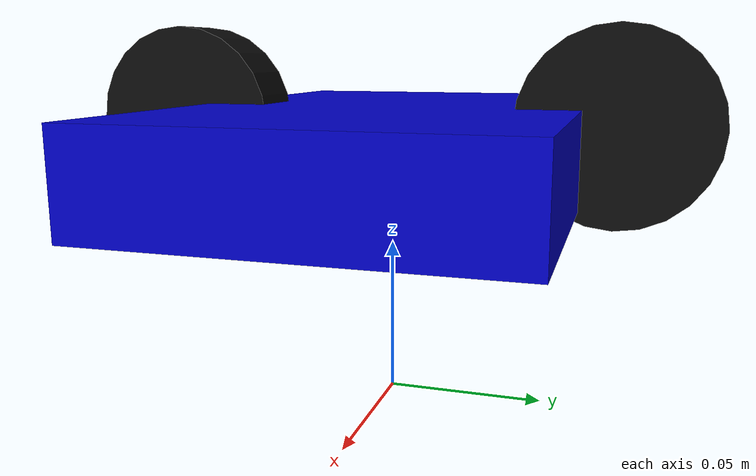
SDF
<?xml version="1.0" ?>
<sdf version="1.6">
  <model name="avoider_robot">
    <pose>0 0 0.04 0 0 0</pose>
    <static>false</static>

    <!-- هيكل الروبوت -->
    <link name="base_link">
      <pose>0 0 0.04 0 0 0</pose>
      <inertial>
        <mass>0.8</mass>
        <inertia>
          <ixx>0.002</ixx><ixy>0</ixy><ixz>0</ixz>
          <iyy>0.004</iyy><iyz>0</iyz>
          <izz>0.004</izz>
        </inertia>
      </inertial>

      <collision name="base_collision">
        <geometry>
          <box><size>0.18 0.12 0.03</size></box>
        </geometry>
        <surface>
          <friction>
            <ode>
              <mu>0.8</mu>
              <mu2>0.8</mu2>
            </ode>
          </friction>
        </surface>
      </collision>

      <visual name="base_visual">
        <geometry>
          <box><size>0.18 0.12 0.03</size></box>
        </geometry>
        <material>
          <ambient>0 0 0.5 1</ambient>
          <diffuse>0 0 0.8 1</diffuse>
        </material>
      </visual>

      <!-- حساس Ray للأمام (بدون أي plugin) -->
      <sensor name="front_ray" type="ray">
        <pose>0.10 0 0.05 0 0 0</pose>
        <always_on>true</always_on>
        <update_rate>20</update_rate>
        <ray>
          <scan>
            <horizontal>
              <samples>21</samples>
              <resolution>1</resolution>
              <min_angle>-0.35</min_angle>
              <max_angle>0.35</max_angle>
            </horizontal>
          </scan>
          <range>
            <min>0.02</min>
            <max>2.8</max>
            <resolution>0.01</resolution>
          </range>
        </ray>
      </sensor>
    </link>

    <!-- عجلة يسار -->
    <link name="left_wheel_link">
      <pose>0.0 0.07 0.05 0 1.5708 0</pose>
      <inertial>
        <mass>0.05</mass>
        <inertia>
          <ixx>1e-4</ixx><ixy>0</ixy><ixz>0</ixz>
          <iyy>1e-4</iyy><iyz>0</iyz>
          <izz>1e-4</izz>
        </inertia>
      </inertial>
      <collision name="left_wheel_collision">
        <geometry>
          <cylinder><radius>0.03</radius><length>0.02</length></cylinder>
        </geometry>
        <surface>
          <friction>
            <ode>
              <mu>1.2</mu><mu2>1.2</mu2>
            </ode>
          </friction>
        </surface>
      </collision>
      <visual name="left_wheel_visual">
        <geometry>
          <cylinder><radius>0.03</radius><length>0.02</length></cylinder>
        </geometry>
        <material>
          <ambient>0.05 0.05 0.05 1</ambient>
          <diffuse>0.05 0.05 0.05 1</diffuse>
        </material>
      </visual>
    </link>

    <!-- عجلة يمين -->
    <link name="right_wheel_link">
      <pose>0.0 -0.07 0.05 0 1.5708 0</pose>
      <inertial>
        <mass>0.05</mass>
        <inertia>
          <ixx>1e-4</ixx><ixy>0</ixy><ixz>0</ixz>
          <iyy>1e-4</iyy><iyz>0</iyz>
          <izz>1e-4</izz>
        </inertia>
      </inertial>
      <collision name="right_wheel_collision">
        <geometry>
          <cylinder><radius>0.03</radius><length>0.02</length></cylinder>
        </geometry>
        <surface>
          <friction>
            <ode>
              <mu>1.2</mu><mu2>1.2</mu2>
            </ode>
          </friction>
        </surface>
      </collision>
      <visual name="right_wheel_visual">
        <geometry>
          <cylinder><radius>0.03</radius><length>0.02</length></cylinder>
        </geometry>
        <material>
          <ambient>0.05 0.05 0.05 1</ambient>
          <diffuse>0.05 0.05 0.05 1</diffuse>
        </material>
      </visual>
    </link>

    <!-- مفاصل العجلات -->
    <joint name="left_wheel_joint" type="revolute">
      <parent>base_link</parent>
      <child>left_wheel_link</child>
      <pose>0 0 0 0 0 0</pose>
      <axis>
        <xyz>0 1 0</xyz>
        <limit><lower>-1e16</lower><upper>1e16</upper></limit>
        <dynamics><friction>0.0</friction></dynamics>
      </axis>
    </joint>

    <joint name="right_wheel_joint" type="revolute">
      <parent>base_link</parent>
      <child>right_wheel_link</child>
      <pose>0 0 0 0 0 0</pose>
      <axis>
        <xyz>0 1 0</xyz>
        <limit><lower>-1e16</lower><upper>1e16</upper></limit>
        <dynamics><friction>0.0</friction></dynamics>
      </axis>
    </joint>

    <!-- هنا الـ ModelPlugin وليس داخل الـ sensor -->
    <plugin name="avoider_plugin" filename="libavoider_plugin.so">
      <left_joint>left_wheel_joint</left_joint>
      <right_joint>right_wheel_joint</right_joint>
      <safe_distance>0.28</safe_distance>
      <turn_time_ms>420</turn_time_ms>
      <speed>2.2</speed>
    </plugin>
  </model>
</sdf>
